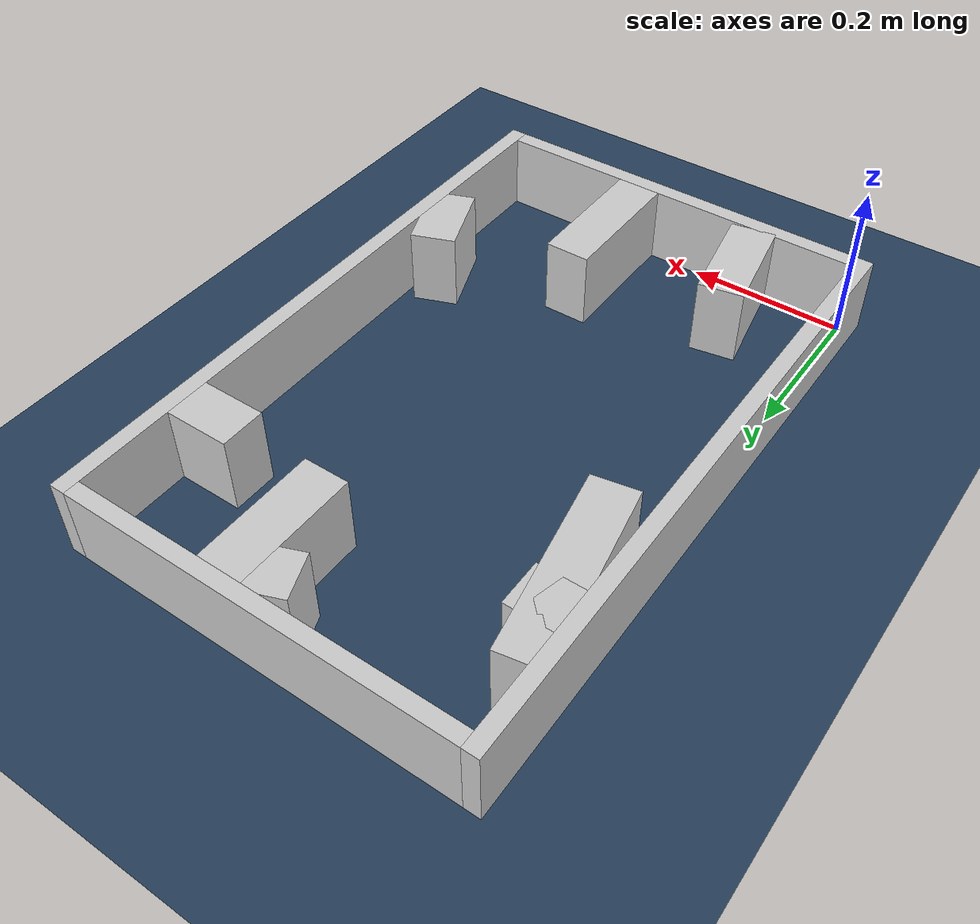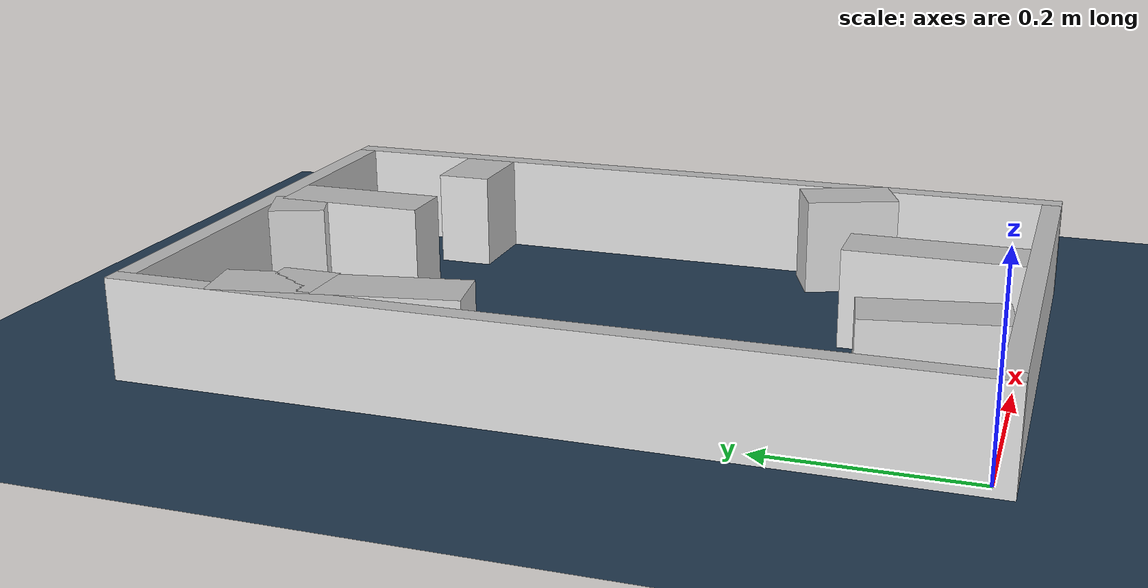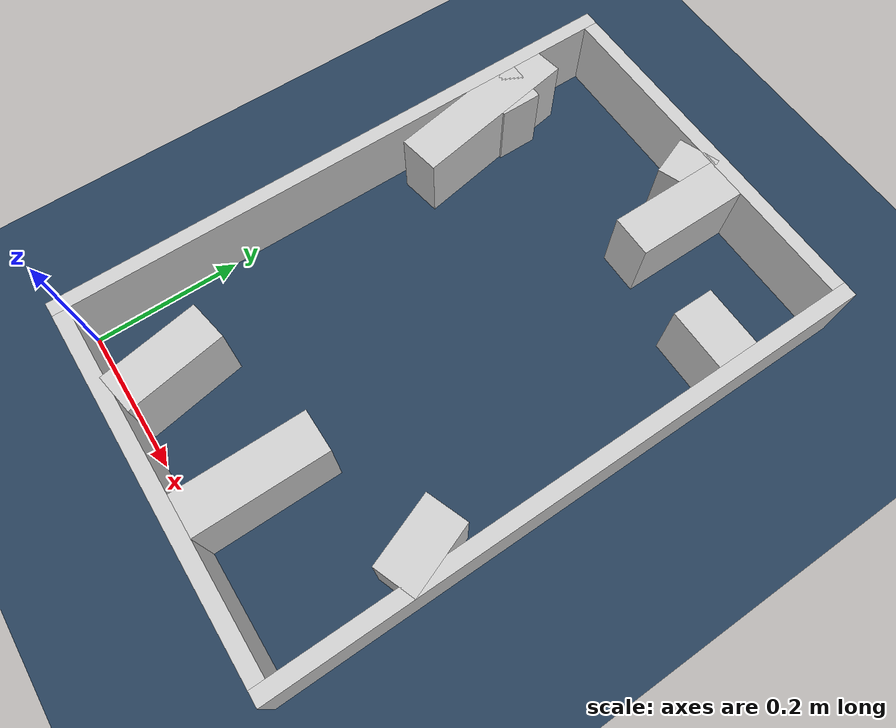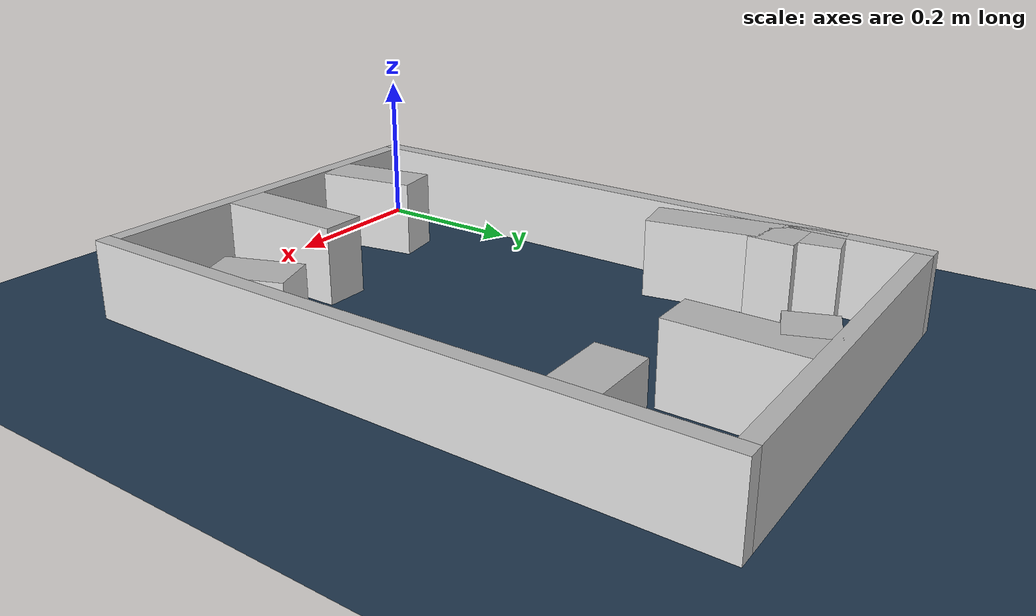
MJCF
<?xml version="1.0" ?>
<mujoco model="generated_real_template">
  <compiler angle="degree"/>
  <option timestep="0.002" integrator="implicitfast" iterations="100" cone="elliptic"/>
  <default>
    <geom density="1"/>
  </default>
  <asset>
    <texture builtin="gradient" height="3072" rgb1="0.3 0.5 0.7" rgb2="0 0 0" type="skybox" width="512"/>
    <texture builtin="checker" height="300" mark="edge" markrgb="0.8 0.8 0.8" name="groundplane" rgb1="0.2 0.3 0.4" rgb2="0.1 0.2 0.3" type="2d" width="300"/>
    <material name="groundplane" reflectance="0.2" texrepeat="5 5" texture="groundplane" texuniform="true"/>
  </asset>
  <worldbody>
    <light dir="0 0 -1" directional="true" pos="0 0 1.5"/>
    <geom name="floor" type="plane" condim="4" friction="0.5 0.005 0.001" material="groundplane" size="0 0 0.05"/>
    <body name="walls">
      <geom name="wall_boundary_left" type="box" condim="4" friction="1.0 0.005 0.0001" rgba="0.8 0.8 0.8 1" pos="-0.010000 0.387500 0.050000" euler="0 0 0.000000" size="0.010000 0.407500 0.050000"/>
      <geom name="wall_boundary_right" type="box" condim="4" friction="1.0 0.005 0.0001" rgba="0.8 0.8 0.8 1" pos="0.500000 0.387500 0.050000" euler="0 0 0.000000" size="0.010000 0.407500 0.050000"/>
      <geom name="wall_boundary_bottom" type="box" condim="4" friction="1.0 0.005 0.0001" rgba="0.8 0.8 0.8 1" pos="0.245000 -0.010000 0.050000" euler="0 0 0.000000" size="0.245000 0.010000 0.050000"/>
      <geom name="wall_boundary_top" type="box" condim="4" friction="1.0 0.005 0.0001" rgba="0.8 0.8 0.8 1" pos="0.245000 0.785000 0.050000" euler="0 0 0.000000" size="0.245000 0.010000 0.050000"/>
      <geom name="wall_inner_1_1" type="box" condim="4" friction="1.0 0.005 0.0001" rgba="0.8 0.8 0.8 1" pos="0.028742 0.625439 0.050000" euler="0 0 0.000000" size="0.028742 0.028500 0.050000"/>
      <geom name="wall_inner_1_2" type="box" condim="4" friction="1.0 0.005 0.0001" rgba="0.8 0.8 0.8 1" pos="0.448881 0.625439 0.050000" euler="0 0 0.000000" size="0.041119 0.028500 0.050000"/>
      <geom name="wall_inner_2_1" type="box" condim="4" friction="1.0 0.005 0.0001" rgba="0.8 0.8 0.8 1" pos="0.028331 0.581982 0.050000" euler="0 0 -80.026030" size="0.116979 0.028500 0.050000"/>
      <geom name="wall_inner_2_2" type="box" condim="4" friction="1.0 0.005 0.0001" rgba="0.8 0.8 0.8 1" pos="0.119021 0.066287 0.050000" euler="0 0 -80.026030" size="0.067304 0.028500 0.050000"/>
      <geom name="wall_inner_3_1" type="box" condim="4" friction="1.0 0.005 0.0001" rgba="0.8 0.8 0.8 1" pos="0.296809 0.086818 0.050000" euler="0 0 90.000000" size="0.086818 0.028500 0.050000"/>
      <geom name="wall_inner_3_2" type="box" condim="4" friction="1.0 0.005 0.0001" rgba="0.8 0.8 0.8 1" pos="0.296809 0.697716 0.050000" euler="0 0 90.000000" size="0.077284 0.028500 0.050000"/>
      <geom name="wall_inner_4_1" type="box" condim="4" friction="1.0 0.005 0.0001" rgba="0.8 0.8 0.8 1" pos="0.256075 0.748068 0.050000" euler="0 0 -69.015099" size="0.028845 0.028500 0.050000"/>
      <geom name="wall_inner_4_2" type="box" condim="4" friction="1.0 0.005 0.0001" rgba="0.8 0.8 0.8 1" pos="0.466001 0.200761 0.050000" euler="0 0 -69.015099" size="0.048555 0.028500 0.050000"/>
    </body>
  </worldbody>
</mujoco>
